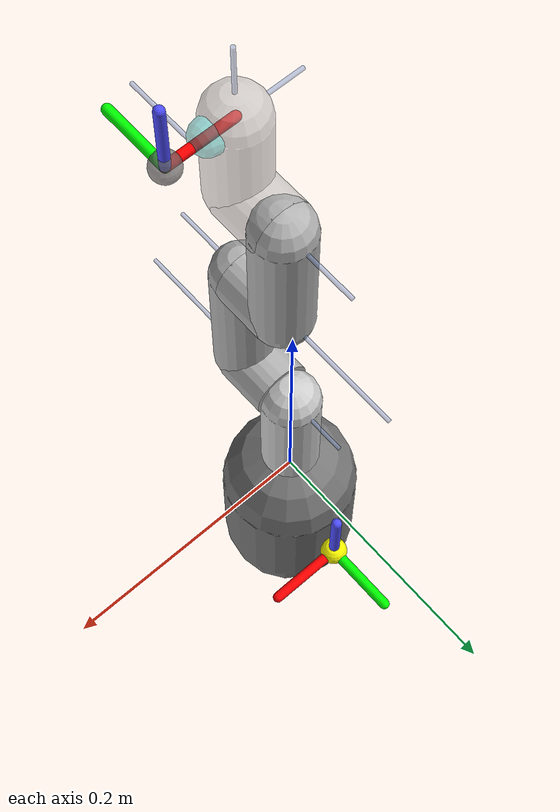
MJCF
<?xml version="1.0" ?>
<mujoco>
    <option gravity="0 0 0" integrator="implicitfast" timestep="0.002" cone="elliptic" impratio="3" noslip_iterations="6"/>
    <compiler angle="degree"/>
    <visual>
        <headlight active="0"/>
    </visual>

    <worldbody>
        <light cutoff="100" ambient=".3 .3 .3" diffuse="1 1 1" specular=".8 .8 .8" directional="false" pos="5 -3 7" castshadow="false"/>
        <light cutoff="100" ambient=".2 .2 .2" diffuse=".6 .6 .6" specular=".7 .7 .7" directional="false" pos="-3 -7 4" castshadow="false"/>

        <body name="cursor" mocap="true" pos=".05 .1 .1" xyaxes="1 0 0 0 1 0">
            <geom type="sphere"  size="0.009" contype="0" conaffinity="0" rgba="1 1 0 1"/>
            <geom type="capsule" size="0.0035" fromto="0 0 0  .05 0 0" contype="0" conaffinity="0" mass=".001" rgba="1 0 0 1"/>
            <geom type="capsule" size="0.0035" fromto="0 0 0  0 .05 0" contype="0" conaffinity="0" mass=".001" rgba="0 1 0 1"/>
            <geom type="capsule" size="0.0035" fromto="0 0 0 0 0 0.05" contype="0" conaffinity="0" rgba=".3 .3 1 1"/>
        </body>

        <body name = "A" pos="0 0 -.15">
            <geom type="capsule" size="0.052" fromto="0 0 0.04 0 0 0.126" rgba="0.47 0.47 0.47 1"/>
            <geom type="capsule" size="0.022" fromto="0 0 0.1 0 0 0.26" contype="0" conaffinity="0" rgba="0.8 .8 .8 1"/>
            <joint name="j1" type="hinge" range="-165 165" axis="0 0 1"/>
            <geom type="cylinder" size=".0015" fromto="0 0 -.1 0 0 .1" contype="0" conaffinity="0"  rgba=".5 .6 .8 .5"/>
            <body name="B" pos="0 -.05 .26">
                <geom type="capsule" size="0.022" fromto="0 0 0 0 0 0.11" rgba="0.7 0.7 0.7 1"/>
                <geom type="cylinder" size="0.0221" fromto="0 0 0 0 0.04 0" rgba="0.7 0.7 0.7 1"/>
                <joint name="j2" type="hinge" range="10 165" axis="0 1 0"/>
                <geom type="cylinder" size=".0015" fromto="0 -.1 0 0 .1 0" contype="0" conaffinity="0"  rgba=".5 .6 .8 .5"/>
                <body name="C" pos="0 0.04 0.11">
                    <geom type="capsule" size="0.022" fromto="0 0 0 0 0 0.1" rgba="0.7 0.7 0.7 1"/>
                    <geom type="cylinder" size="0.0221" fromto="0 0 0 0 -.04 0" rgba="0.7 0.7 0.7 1"/>
                    <joint name="j3" type="hinge" range="10 165" axis="0 1 0"/>
                    <geom type="cylinder" size=".0015" fromto="0 -.1 0 0 .1 0" contype="0" conaffinity="0"  rgba=".5 .6 .8 .5"/>
                    <body name="D" pos="0 -.04 0.1">
                        <joint name="j4" type="hinge" range="-165 165" axis="0 1 0"/>
                        <geom type="cylinder" size=".0015" fromto="0 -.1 0 0 .1 0" contype="0" conaffinity="0"  rgba=".5 .6 .8 .5"/>
                        <geom type="capsule" size="0.022" fromto="0 0 0 0 0 0.07" rgba="0.7 0.7 0.7 .51"/>
                        <geom type="cylinder" size="0.0221" fromto="0 0 0 0 0.04 0" rgba="0.7 0.7 0.7 .51"/>
                        <body name="E" pos="0 0 0.07" xyaxes="-1 0 0 0 -1 0">
                            <joint name="j5" type="hinge" range="-165 165" axis="0 0 1"/>
                            <geom type="cylinder" size=".0015" fromto="0 0 -.06 0 0 .06" rgba=".5 .6 .8 .5"/>
                            <geom type="capsule" size="0.012" fromto="0 0 0 -.02 0 0" contype="0" conaffinity="0" rgba="0.17 0.7 0.7 .51"/>
                            <body name="F" pos="0 0 0">
                                <joint name="j6" type="hinge" range="-180 180" axis="1 0 0"/>
                                <geom type="cylinder" size=".0015" fromto="-.05 0 0 .05 0 0" rgba=".5 .6 .8 .5"/>
                                <body name="endpt" pos="-.05 0 0">
                                    <geom type="sphere" size="0.01" contype="0" conaffinity="0" rgba="0.4 .4 .4 .7"/>
                                    <geom type="capsule" size="0.0035" fromto="0 0 0  .05 0 0" contype="0" conaffinity="0" mass="1" rgba="1 0 0 1"/>
                                    <geom type="capsule" size="0.0035" fromto="0 0 0  0 .05 0" contype="0" conaffinity="0" mass="1" rgba="0 1 0 1"/>
                                    <geom type="capsule" size="0.0035" fromto="0 0 0  0 0 0.05" contype="0" conaffinity="0" rgba=".3 .3 1 1"/>
                                </body>
                            </body>
                        </body>
                    </body>
                </body>
            </body>
        </body>
    </worldbody>

    <actuator>
        <position name="j1" inheritrange="1" kp="60" kv="12" joint="j1"/>
        <position name="j2" inheritrange="1" kp="120" kv="24" joint="j2"/>
        <position name="j3" inheritrange="1" kp="60" kv="12" joint="j3"/>
        <position name="j4" inheritrange="1" kp="60" kv="12" joint="j4"/>
        <position name="j5" inheritrange="1" kp="20" kv="4" joint="j5"/>
        <position name="j6" inheritrange="1" kp="6" kv="1" joint="j6"/>
    </actuator>
</mujoco>
